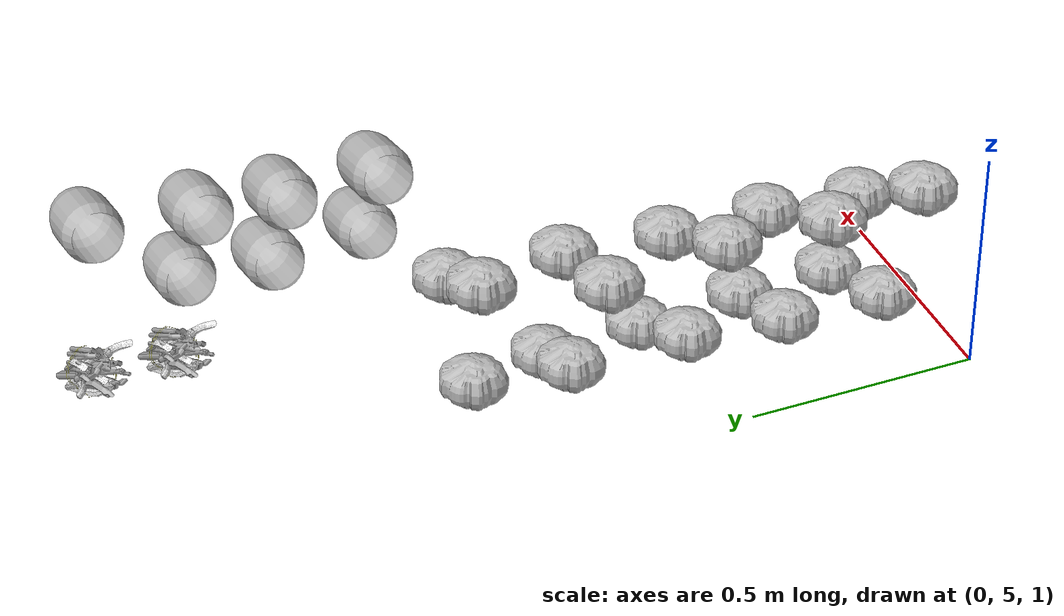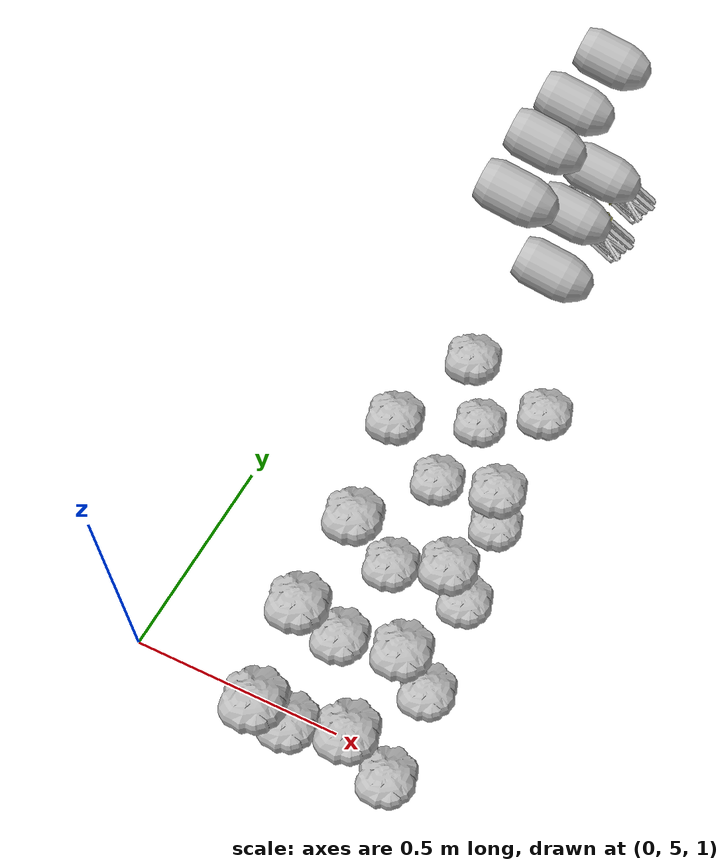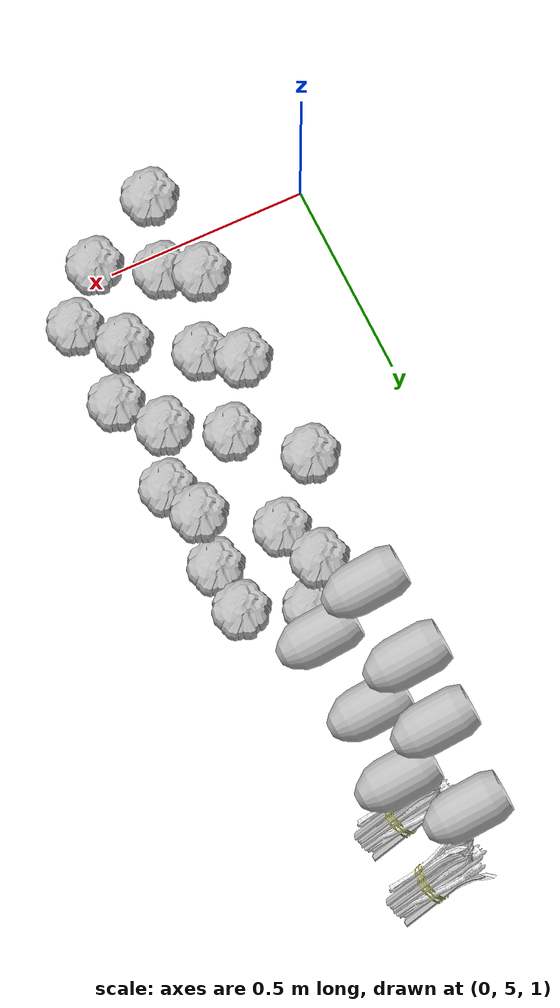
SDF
<sdf version="1.6">
 <world name="default">
  <model name="coliflower">
   <link name="link_2">
    <inertial>
     <mass>1</mass>
     <inertia>
      <ixx>0.166667</ixx>
      <ixy>0</ixy>
      <ixz>0</ixz>
      <iyy>0.166667</iyy>
      <iyz>0</iyz>
      <izz>0.166667</izz>
     </inertia>
    </inertial>
    <visual name="visual">
     <geometry><mesh><uri>model://coliflower/meshes/coliflower.dae</uri><scale>1 1 1</scale></mesh></geometry>
    </visual>
    <collision name="collision">
     <geometry><mesh><uri>model://coliflower/meshes/coliflower.dae</uri><scale>1 1 1</scale></mesh></geometry>
     <surface>
      <friction>
       <ode><mu>1</mu><mu2>1</mu2><fdir1>0 0 0</fdir1><slip1>0</slip1><slip2>0</slip2></ode>
       <torsional>
        <coefficient>1</coefficient>
        <patch_radius>0</patch_radius>
        <surface_radius>0</surface_radius>
        <use_patch_radius>1</use_patch_radius>
        <ode><slip>0</slip></ode>
       </torsional>
      </friction>
      <bounce><restitution_coefficient>0</restitution_coefficient><threshold>1e+06</threshold></bounce>
      <contact>
       <collide_without_contact>0</collide_without_contact>
       <collide_without_contact_bitmask>1</collide_without_contact_bitmask>
       <collide_bitmask>1</collide_bitmask>
       <ode>
        <soft_cfm>0</soft_cfm>
        <soft_erp>0.2</soft_erp>
        <kp>1e+13</kp>
        <kd>1</kd>
        <max_vel>0.01</max_vel>
        <min_depth>0</min_depth>
       </ode>
       <bullet>
        <split_impulse>1</split_impulse>
        <split_impulse_penetration_threshold>-0.01</split_impulse_penetration_threshold>
        <soft_cfm>0</soft_cfm>
        <soft_erp>0.2</soft_erp>
        <kp>1e+13</kp>
        <kd>1</kd>
       </bullet>
      </contact>
     </surface>
    </collision>
   </link>
   <static>1</static>
   <pose>0.357999 4.96364 1.14067 0 -0 0</pose>
  </model>
  <model name="coliflower_clone">
   <link name="link_2">
    <inertial>
     <mass>1</mass>
     <inertia>
      <ixx>0.166667</ixx>
      <ixy>0</ixy>
      <ixz>0</ixz>
      <iyy>0.166667</iyy>
      <iyz>0</iyz>
      <izz>0.166667</izz>
     </inertia>
    </inertial>
    <visual name="visual">
     <geometry><mesh><uri>model://coliflower/meshes/coliflower.dae</uri><scale>1 1 1</scale></mesh></geometry>
    </visual>
    <collision name="collision">
     <geometry><mesh><uri>model://coliflower/meshes/coliflower.dae</uri><scale>1 1 1</scale></mesh></geometry>
     <surface>
      <friction>
       <ode><mu>1</mu><mu2>1</mu2><fdir1>0 0 0</fdir1><slip1>0</slip1><slip2>0</slip2></ode>
       <torsional>
        <coefficient>1</coefficient>
        <patch_radius>0</patch_radius>
        <surface_radius>0</surface_radius>
        <use_patch_radius>1</use_patch_radius>
        <ode><slip>0</slip></ode>
       </torsional>
      </friction>
      <bounce><restitution_coefficient>0</restitution_coefficient><threshold>1e+06</threshold></bounce>
      <contact>
       <collide_without_contact>0</collide_without_contact>
       <collide_without_contact_bitmask>1</collide_without_contact_bitmask>
       <collide_bitmask>1</collide_bitmask>
       <ode>
        <soft_cfm>0</soft_cfm>
        <soft_erp>0.2</soft_erp>
        <kp>1e+13</kp>
        <kd>1</kd>
        <max_vel>0.01</max_vel>
        <min_depth>0</min_depth>
       </ode>
       <bullet>
        <split_impulse>1</split_impulse>
        <split_impulse_penetration_threshold>-0.01</split_impulse_penetration_threshold>
        <soft_cfm>0</soft_cfm>
        <soft_erp>0.2</soft_erp>
        <kp>1e+13</kp>
        <kd>1</kd>
       </bullet>
      </contact>
     </surface>
    </collision>
   </link>
   <static>1</static>
   <pose>0.331237 5.19241 1.14067 0 -0 0</pose>
  </model>
  <model name="coliflower_clone_clone">
   <link name="link_2">
    <inertial>
     <mass>1</mass>
     <inertia>
      <ixx>0.166667</ixx>
      <ixy>0</ixy>
      <ixz>0</ixz>
      <iyy>0.166667</iyy>
      <iyz>0</iyz>
      <izz>0.166667</izz>
     </inertia>
    </inertial>
    <visual name="visual">
     <geometry><mesh><uri>model://coliflower/meshes/coliflower.dae</uri><scale>1 1 1</scale></mesh></geometry>
    </visual>
    <collision name="collision">
     <geometry><mesh><uri>model://coliflower/meshes/coliflower.dae</uri><scale>1 1 1</scale></mesh></geometry>
     <surface>
      <friction>
       <ode><mu>1</mu><mu2>1</mu2><fdir1>0 0 0</fdir1><slip1>0</slip1><slip2>0</slip2></ode>
       <torsional>
        <coefficient>1</coefficient>
        <patch_radius>0</patch_radius>
        <surface_radius>0</surface_radius>
        <use_patch_radius>1</use_patch_radius>
        <ode><slip>0</slip></ode>
       </torsional>
      </friction>
      <bounce><restitution_coefficient>0</restitution_coefficient><threshold>1e+06</threshold></bounce>
      <contact>
       <collide_without_contact>0</collide_without_contact>
       <collide_without_contact_bitmask>1</collide_without_contact_bitmask>
       <collide_bitmask>1</collide_bitmask>
       <ode>
        <soft_cfm>0</soft_cfm>
        <soft_erp>0.2</soft_erp>
        <kp>1e+13</kp>
        <kd>1</kd>
        <max_vel>0.01</max_vel>
        <min_depth>0</min_depth>
       </ode>
       <bullet>
        <split_impulse>1</split_impulse>
        <split_impulse_penetration_threshold>-0.01</split_impulse_penetration_threshold>
        <soft_cfm>0</soft_cfm>
        <soft_erp>0.2</soft_erp>
        <kp>1e+13</kp>
        <kd>1</kd>
       </bullet>
      </contact>
     </surface>
    </collision>
   </link>
   <static>1</static>
   <pose>0.337462 5.4347 1.14067 0 -0 0</pose>
  </model>
  <model name="coliflower_clone_clone_0">
   <link name="link_2">
    <inertial>
     <mass>1</mass>
     <inertia>
      <ixx>0.166667</ixx>
      <ixy>0</ixy>
      <ixz>0</ixz>
      <iyy>0.166667</iyy>
      <iyz>0</iyz>
      <izz>0.166667</izz>
     </inertia>
    </inertial>
    <visual name="visual">
     <geometry><mesh><uri>model://coliflower/meshes/coliflower.dae</uri><scale>1 1 1</scale></mesh></geometry>
    </visual>
    <collision name="collision">
     <geometry><mesh><uri>model://coliflower/meshes/coliflower.dae</uri><scale>1 1 1</scale></mesh></geometry>
     <surface>
      <friction>
       <ode><mu>1</mu><mu2>1</mu2><fdir1>0 0 0</fdir1><slip1>0</slip1><slip2>0</slip2></ode>
       <torsional>
        <coefficient>1</coefficient>
        <patch_radius>0</patch_radius>
        <surface_radius>0</surface_radius>
        <use_patch_radius>1</use_patch_radius>
        <ode><slip>0</slip></ode>
       </torsional>
      </friction>
      <bounce><restitution_coefficient>0</restitution_coefficient><threshold>1e+06</threshold></bounce>
      <contact>
       <collide_without_contact>0</collide_without_contact>
       <collide_without_contact_bitmask>1</collide_without_contact_bitmask>
       <collide_bitmask>1</collide_bitmask>
       <ode>
        <soft_cfm>0</soft_cfm>
        <soft_erp>0.2</soft_erp>
        <kp>1e+13</kp>
        <kd>1</kd>
        <max_vel>0.01</max_vel>
        <min_depth>0</min_depth>
       </ode>
       <bullet>
        <split_impulse>1</split_impulse>
        <split_impulse_penetration_threshold>-0.01</split_impulse_penetration_threshold>
        <soft_cfm>0</soft_cfm>
        <soft_erp>0.2</soft_erp>
        <kp>1e+13</kp>
        <kd>1</kd>
       </bullet>
      </contact>
     </surface>
    </collision>
   </link>
   <static>1</static>
   <pose>0.299893 5.72138 1.14067 0 -0 0</pose>
  </model>
  <model name="coliflower_clone_clone_1">
   <link name="link_2">
    <inertial>
     <mass>1</mass>
     <inertia>
      <ixx>0.166667</ixx>
      <ixy>0</ixy>
      <ixz>0</ixz>
      <iyy>0.166667</iyy>
      <iyz>0</iyz>
      <izz>0.166667</izz>
     </inertia>
    </inertial>
    <visual name="visual">
     <geometry><mesh><uri>model://coliflower/meshes/coliflower.dae</uri><scale>1 1 1</scale></mesh></geometry>
    </visual>
    <collision name="collision">
     <geometry><mesh><uri>model://coliflower/meshes/coliflower.dae</uri><scale>1 1 1</scale></mesh></geometry>
     <surface>
      <friction>
       <ode><mu>1</mu><mu2>1</mu2><fdir1>0 0 0</fdir1><slip1>0</slip1><slip2>0</slip2></ode>
       <torsional>
        <coefficient>1</coefficient>
        <patch_radius>0</patch_radius>
        <surface_radius>0</surface_radius>
        <use_patch_radius>1</use_patch_radius>
        <ode><slip>0</slip></ode>
       </torsional>
      </friction>
      <bounce><restitution_coefficient>0</restitution_coefficient><threshold>1e+06</threshold></bounce>
      <contact>
       <collide_without_contact>0</collide_without_contact>
       <collide_without_contact_bitmask>1</collide_without_contact_bitmask>
       <collide_bitmask>1</collide_bitmask>
       <ode>
        <soft_cfm>0</soft_cfm>
        <soft_erp>0.2</soft_erp>
        <kp>1e+13</kp>
        <kd>1</kd>
        <max_vel>0.01</max_vel>
        <min_depth>0</min_depth>
       </ode>
       <bullet>
        <split_impulse>1</split_impulse>
        <split_impulse_penetration_threshold>-0.01</split_impulse_penetration_threshold>
        <soft_cfm>0</soft_cfm>
        <soft_erp>0.2</soft_erp>
        <kp>1e+13</kp>
        <kd>1</kd>
       </bullet>
      </contact>
     </surface>
    </collision>
   </link>
   <static>1</static>
   <pose>0.394632 5.96597 1.14067 0 -0 0</pose>
  </model>
  <model name="coliflower_clone_clone_2">
   <link name="link_2">
    <inertial>
     <mass>1</mass>
     <inertia>
      <ixx>0.166667</ixx>
      <ixy>0</ixy>
      <ixz>0</ixz>
      <iyy>0.166667</iyy>
      <iyz>0</iyz>
      <izz>0.166667</izz>
     </inertia>
    </inertial>
    <visual name="visual">
     <geometry><mesh><uri>model://coliflower/meshes/coliflower.dae</uri><scale>1 1 1</scale></mesh></geometry>
    </visual>
    <collision name="collision">
     <geometry><mesh><uri>model://coliflower/meshes/coliflower.dae</uri><scale>1 1 1</scale></mesh></geometry>
     <surface>
      <friction>
       <ode><mu>1</mu><mu2>1</mu2><fdir1>0 0 0</fdir1><slip1>0</slip1><slip2>0</slip2></ode>
       <torsional>
        <coefficient>1</coefficient>
        <patch_radius>0</patch_radius>
        <surface_radius>0</surface_radius>
        <use_patch_radius>1</use_patch_radius>
        <ode><slip>0</slip></ode>
       </torsional>
      </friction>
      <bounce><restitution_coefficient>0</restitution_coefficient><threshold>1e+06</threshold></bounce>
      <contact>
       <collide_without_contact>0</collide_without_contact>
       <collide_without_contact_bitmask>1</collide_without_contact_bitmask>
       <collide_bitmask>1</collide_bitmask>
       <ode>
        <soft_cfm>0</soft_cfm>
        <soft_erp>0.2</soft_erp>
        <kp>1e+13</kp>
        <kd>1</kd>
        <max_vel>0.01</max_vel>
        <min_depth>0</min_depth>
       </ode>
       <bullet>
        <split_impulse>1</split_impulse>
        <split_impulse_penetration_threshold>-0.01</split_impulse_penetration_threshold>
        <soft_cfm>0</soft_cfm>
        <soft_erp>0.2</soft_erp>
        <kp>1e+13</kp>
        <kd>1</kd>
       </bullet>
      </contact>
     </surface>
    </collision>
   </link>
   <static>1</static>
   <pose>0.594498 5.96491 1.02947 0 -0 0</pose>
  </model>
  <model name="coliflower_clone_clone_2_clone">
   <link name="link_2">
    <inertial>
     <mass>1</mass>
     <inertia>
      <ixx>0.166667</ixx>
      <ixy>0</ixy>
      <ixz>0</ixz>
      <iyy>0.166667</iyy>
      <iyz>0</iyz>
      <izz>0.166667</izz>
     </inertia>
    </inertial>
    <visual name="visual">
     <geometry><mesh><uri>model://coliflower/meshes/coliflower.dae</uri><scale>1 1 1</scale></mesh></geometry>
    </visual>
    <collision name="collision">
     <geometry><mesh><uri>model://coliflower/meshes/coliflower.dae</uri><scale>1 1 1</scale></mesh></geometry>
     <surface>
      <friction>
       <ode><mu>1</mu><mu2>1</mu2><fdir1>0 0 0</fdir1><slip1>0</slip1><slip2>0</slip2></ode>
       <torsional>
        <coefficient>1</coefficient>
        <patch_radius>0</patch_radius>
        <surface_radius>0</surface_radius>
        <use_patch_radius>1</use_patch_radius>
        <ode><slip>0</slip></ode>
       </torsional>
      </friction>
      <bounce><restitution_coefficient>0</restitution_coefficient><threshold>1e+06</threshold></bounce>
      <contact>
       <collide_without_contact>0</collide_without_contact>
       <collide_without_contact_bitmask>1</collide_without_contact_bitmask>
       <collide_bitmask>1</collide_bitmask>
       <ode>
        <soft_cfm>0</soft_cfm>
        <soft_erp>0.2</soft_erp>
        <kp>1e+13</kp>
        <kd>1</kd>
        <max_vel>0.01</max_vel>
        <min_depth>0</min_depth>
       </ode>
       <bullet>
        <split_impulse>1</split_impulse>
        <split_impulse_penetration_threshold>-0.01</split_impulse_penetration_threshold>
        <soft_cfm>0</soft_cfm>
        <soft_erp>0.2</soft_erp>
        <kp>1e+13</kp>
        <kd>1</kd>
       </bullet>
      </contact>
     </surface>
    </collision>
   </link>
   <static>1</static>
   <pose>0.579307 5.70301 1.02947 0 -0 0</pose>
  </model>
  <model name="coliflower_clone_clone_2_clone_0">
   <link name="link_2">
    <inertial>
     <mass>1</mass>
     <inertia>
      <ixx>0.166667</ixx>
      <ixy>0</ixy>
      <ixz>0</ixz>
      <iyy>0.166667</iyy>
      <iyz>0</iyz>
      <izz>0.166667</izz>
     </inertia>
    </inertial>
    <visual name="visual">
     <geometry><mesh><uri>model://coliflower/meshes/coliflower.dae</uri><scale>1 1 1</scale></mesh></geometry>
    </visual>
    <collision name="collision">
     <geometry><mesh><uri>model://coliflower/meshes/coliflower.dae</uri><scale>1 1 1</scale></mesh></geometry>
     <surface>
      <friction>
       <ode><mu>1</mu><mu2>1</mu2><fdir1>0 0 0</fdir1><slip1>0</slip1><slip2>0</slip2></ode>
       <torsional>
        <coefficient>1</coefficient>
        <patch_radius>0</patch_radius>
        <surface_radius>0</surface_radius>
        <use_patch_radius>1</use_patch_radius>
        <ode><slip>0</slip></ode>
       </torsional>
      </friction>
      <bounce><restitution_coefficient>0</restitution_coefficient><threshold>1e+06</threshold></bounce>
      <contact>
       <collide_without_contact>0</collide_without_contact>
       <collide_without_contact_bitmask>1</collide_without_contact_bitmask>
       <collide_bitmask>1</collide_bitmask>
       <ode>
        <soft_cfm>0</soft_cfm>
        <soft_erp>0.2</soft_erp>
        <kp>1e+13</kp>
        <kd>1</kd>
        <max_vel>0.01</max_vel>
        <min_depth>0</min_depth>
       </ode>
       <bullet>
        <split_impulse>1</split_impulse>
        <split_impulse_penetration_threshold>-0.01</split_impulse_penetration_threshold>
        <soft_cfm>0</soft_cfm>
        <soft_erp>0.2</soft_erp>
        <kp>1e+13</kp>
        <kd>1</kd>
       </bullet>
      </contact>
     </surface>
    </collision>
   </link>
   <static>1</static>
   <pose>0.558591 5.46787 1.02947 0 -0 0</pose>
  </model>
  <model name="coliflower_clone_clone_2_clone_1">
   <link name="link_2">
    <inertial>
     <mass>1</mass>
     <inertia>
      <ixx>0.166667</ixx>
      <ixy>0</ixy>
      <ixz>0</ixz>
      <iyy>0.166667</iyy>
      <iyz>0</iyz>
      <izz>0.166667</izz>
     </inertia>
    </inertial>
    <visual name="visual">
     <geometry><mesh><uri>model://coliflower/meshes/coliflower.dae</uri><scale>1 1 1</scale></mesh></geometry>
    </visual>
    <collision name="collision">
     <geometry><mesh><uri>model://coliflower/meshes/coliflower.dae</uri><scale>1 1 1</scale></mesh></geometry>
     <surface>
      <friction>
       <ode><mu>1</mu><mu2>1</mu2><fdir1>0 0 0</fdir1><slip1>0</slip1><slip2>0</slip2></ode>
       <torsional>
        <coefficient>1</coefficient>
        <patch_radius>0</patch_radius>
        <surface_radius>0</surface_radius>
        <use_patch_radius>1</use_patch_radius>
        <ode><slip>0</slip></ode>
       </torsional>
      </friction>
      <bounce><restitution_coefficient>0</restitution_coefficient><threshold>1e+06</threshold></bounce>
      <contact>
       <collide_without_contact>0</collide_without_contact>
       <collide_without_contact_bitmask>1</collide_without_contact_bitmask>
       <collide_bitmask>1</collide_bitmask>
       <ode>
        <soft_cfm>0</soft_cfm>
        <soft_erp>0.2</soft_erp>
        <kp>1e+13</kp>
        <kd>1</kd>
        <max_vel>0.01</max_vel>
        <min_depth>0</min_depth>
       </ode>
       <bullet>
        <split_impulse>1</split_impulse>
        <split_impulse_penetration_threshold>-0.01</split_impulse_penetration_threshold>
        <soft_cfm>0</soft_cfm>
        <soft_erp>0.2</soft_erp>
        <kp>1e+13</kp>
        <kd>1</kd>
       </bullet>
      </contact>
     </surface>
    </collision>
   </link>
   <static>1</static>
   <pose>0.554069 5.23492 1.02947 0 -0 0</pose>
  </model>
  <model name="coliflower_clone_clone_2_clone_2">
   <link name="link_2">
    <inertial>
     <mass>1</mass>
     <inertia>
      <ixx>0.166667</ixx>
      <ixy>0</ixy>
      <ixz>0</ixz>
      <iyy>0.166667</iyy>
      <iyz>0</iyz>
      <izz>0.166667</izz>
     </inertia>
    </inertial>
    <visual name="visual">
     <geometry><mesh><uri>model://coliflower/meshes/coliflower.dae</uri><scale>1 1 1</scale></mesh></geometry>
    </visual>
    <collision name="collision">
     <geometry><mesh><uri>model://coliflower/meshes/coliflower.dae</uri><scale>1 1 1</scale></mesh></geometry>
     <surface>
      <friction>
       <ode><mu>1</mu><mu2>1</mu2><fdir1>0 0 0</fdir1><slip1>0</slip1><slip2>0</slip2></ode>
       <torsional>
        <coefficient>1</coefficient>
        <patch_radius>0</patch_radius>
        <surface_radius>0</surface_radius>
        <use_patch_radius>1</use_patch_radius>
        <ode><slip>0</slip></ode>
       </torsional>
      </friction>
      <bounce><restitution_coefficient>0</restitution_coefficient><threshold>1e+06</threshold></bounce>
      <contact>
       <collide_without_contact>0</collide_without_contact>
       <collide_without_contact_bitmask>1</collide_without_contact_bitmask>
       <collide_bitmask>1</collide_bitmask>
       <ode>
        <soft_cfm>0</soft_cfm>
        <soft_erp>0.2</soft_erp>
        <kp>1e+13</kp>
        <kd>1</kd>
        <max_vel>0.01</max_vel>
        <min_depth>0</min_depth>
       </ode>
       <bullet>
        <split_impulse>1</split_impulse>
        <split_impulse_penetration_threshold>-0.01</split_impulse_penetration_threshold>
        <soft_cfm>0</soft_cfm>
        <soft_erp>0.2</soft_erp>
        <kp>1e+13</kp>
        <kd>1</kd>
       </bullet>
      </contact>
     </surface>
    </collision>
   </link>
   <static>1</static>
   <pose>0.531966 5.02213 1.02947 0 -0 0</pose>
  </model>
  <model name="coliflower_clone_clone_2_clone_3">
   <link name="link_2">
    <inertial>
     <mass>1</mass>
     <inertia>
      <ixx>0.166667</ixx>
      <ixy>0</ixy>
      <ixz>0</ixz>
      <iyy>0.166667</iyy>
      <iyz>0</iyz>
      <izz>0.166667</izz>
     </inertia>
    </inertial>
    <visual name="visual">
     <geometry><mesh><uri>model://coliflower/meshes/coliflower.dae</uri><scale>1 1 1</scale></mesh></geometry>
    </visual>
    <collision name="collision">
     <geometry><mesh><uri>model://coliflower/meshes/coliflower.dae</uri><scale>1 1 1</scale></mesh></geometry>
     <surface>
      <friction>
       <ode><mu>1</mu><mu2>1</mu2><fdir1>0 0 0</fdir1><slip1>0</slip1><slip2>0</slip2></ode>
       <torsional>
        <coefficient>1</coefficient>
        <patch_radius>0</patch_radius>
        <surface_radius>0</surface_radius>
        <use_patch_radius>1</use_patch_radius>
        <ode><slip>0</slip></ode>
       </torsional>
      </friction>
      <bounce><restitution_coefficient>0</restitution_coefficient><threshold>1e+06</threshold></bounce>
      <contact>
       <collide_without_contact>0</collide_without_contact>
       <collide_without_contact_bitmask>1</collide_without_contact_bitmask>
       <collide_bitmask>1</collide_bitmask>
       <ode>
        <soft_cfm>0</soft_cfm>
        <soft_erp>0.2</soft_erp>
        <kp>1e+13</kp>
        <kd>1</kd>
        <max_vel>0.01</max_vel>
        <min_depth>0</min_depth>
       </ode>
       <bullet>
        <split_impulse>1</split_impulse>
        <split_impulse_penetration_threshold>-0.01</split_impulse_penetration_threshold>
        <soft_cfm>0</soft_cfm>
        <soft_erp>0.2</soft_erp>
        <kp>1e+13</kp>
        <kd>1</kd>
       </bullet>
      </contact>
     </surface>
    </collision>
   </link>
   <static>1</static>
   <pose>0.366536 5.03711 0.877719 0 -0 0</pose>
  </model>
  <model name="coliflower_clone_clone_2_clone_3_clone">
   <link name="link_2">
    <inertial>
     <mass>1</mass>
     <inertia>
      <ixx>0.166667</ixx>
      <ixy>0</ixy>
      <ixz>0</ixz>
      <iyy>0.166667</iyy>
      <iyz>0</iyz>
      <izz>0.166667</izz>
     </inertia>
    </inertial>
    <visual name="visual">
     <geometry><mesh><uri>model://coliflower/meshes/coliflower.dae</uri><scale>1 1 1</scale></mesh></geometry>
    </visual>
    <collision name="collision">
     <geometry><mesh><uri>model://coliflower/meshes/coliflower.dae</uri><scale>1 1 1</scale></mesh></geometry>
     <surface>
      <friction>
       <ode><mu>1</mu><mu2>1</mu2><fdir1>0 0 0</fdir1><slip1>0</slip1><slip2>0</slip2></ode>
       <torsional>
        <coefficient>1</coefficient>
        <patch_radius>0</patch_radius>
        <surface_radius>0</surface_radius>
        <use_patch_radius>1</use_patch_radius>
        <ode><slip>0</slip></ode>
       </torsional>
      </friction>
      <bounce><restitution_coefficient>0</restitution_coefficient><threshold>1e+06</threshold></bounce>
      <contact>
       <collide_without_contact>0</collide_without_contact>
       <collide_without_contact_bitmask>1</collide_without_contact_bitmask>
       <collide_bitmask>1</collide_bitmask>
       <ode>
        <soft_cfm>0</soft_cfm>
        <soft_erp>0.2</soft_erp>
        <kp>1e+13</kp>
        <kd>1</kd>
        <max_vel>0.01</max_vel>
        <min_depth>0</min_depth>
       </ode>
       <bullet>
        <split_impulse>1</split_impulse>
        <split_impulse_penetration_threshold>-0.01</split_impulse_penetration_threshold>
        <soft_cfm>0</soft_cfm>
        <soft_erp>0.2</soft_erp>
        <kp>1e+13</kp>
        <kd>1</kd>
       </bullet>
      </contact>
     </surface>
    </collision>
   </link>
   <static>1</static>
   <pose>0.372603 5.27106 0.877719 0 -0 0</pose>
  </model>
  <model name="coliflower_clone_clone_2_clone_3_clone_0">
   <link name="link_2">
    <inertial>
     <mass>1</mass>
     <inertia>
      <ixx>0.166667</ixx>
      <ixy>0</ixy>
      <ixz>0</ixz>
      <iyy>0.166667</iyy>
      <iyz>0</iyz>
      <izz>0.166667</izz>
     </inertia>
    </inertial>
    <visual name="visual">
     <geometry><mesh><uri>model://coliflower/meshes/coliflower.dae</uri><scale>1 1 1</scale></mesh></geometry>
    </visual>
    <collision name="collision">
     <geometry><mesh><uri>model://coliflower/meshes/coliflower.dae</uri><scale>1 1 1</scale></mesh></geometry>
     <surface>
      <friction>
       <ode><mu>1</mu><mu2>1</mu2><fdir1>0 0 0</fdir1><slip1>0</slip1><slip2>0</slip2></ode>
       <torsional>
        <coefficient>1</coefficient>
        <patch_radius>0</patch_radius>
        <surface_radius>0</surface_radius>
        <use_patch_radius>1</use_patch_radius>
        <ode><slip>0</slip></ode>
       </torsional>
      </friction>
      <bounce><restitution_coefficient>0</restitution_coefficient><threshold>1e+06</threshold></bounce>
      <contact>
       <collide_without_contact>0</collide_without_contact>
       <collide_without_contact_bitmask>1</collide_without_contact_bitmask>
       <collide_bitmask>1</collide_bitmask>
       <ode>
        <soft_cfm>0</soft_cfm>
        <soft_erp>0.2</soft_erp>
        <kp>1e+13</kp>
        <kd>1</kd>
        <max_vel>0.01</max_vel>
        <min_depth>0</min_depth>
       </ode>
       <bullet>
        <split_impulse>1</split_impulse>
        <split_impulse_penetration_threshold>-0.01</split_impulse_penetration_threshold>
        <soft_cfm>0</soft_cfm>
        <soft_erp>0.2</soft_erp>
        <kp>1e+13</kp>
        <kd>1</kd>
       </bullet>
      </contact>
     </surface>
    </collision>
   </link>
   <static>1</static>
   <pose>0.394886 5.49178 0.877719 0 -0 0</pose>
  </model>
  <model name="coliflower_clone_clone_2_clone_3_clone_1">
   <link name="link_2">
    <inertial>
     <mass>1</mass>
     <inertia>
      <ixx>0.166667</ixx>
      <ixy>0</ixy>
      <ixz>0</ixz>
      <iyy>0.166667</iyy>
      <iyz>0</iyz>
      <izz>0.166667</izz>
     </inertia>
    </inertial>
    <visual name="visual">
     <geometry><mesh><uri>model://coliflower/meshes/coliflower.dae</uri><scale>1 1 1</scale></mesh></geometry>
    </visual>
    <collision name="collision">
     <geometry><mesh><uri>model://coliflower/meshes/coliflower.dae</uri><scale>1 1 1</scale></mesh></geometry>
     <surface>
      <friction>
       <ode><mu>1</mu><mu2>1</mu2><fdir1>0 0 0</fdir1><slip1>0</slip1><slip2>0</slip2></ode>
       <torsional>
        <coefficient>1</coefficient>
        <patch_radius>0</patch_radius>
        <surface_radius>0</surface_radius>
        <use_patch_radius>1</use_patch_radius>
        <ode><slip>0</slip></ode>
       </torsional>
      </friction>
      <bounce><restitution_coefficient>0</restitution_coefficient><threshold>1e+06</threshold></bounce>
      <contact>
       <collide_without_contact>0</collide_without_contact>
       <collide_without_contact_bitmask>1</collide_without_contact_bitmask>
       <collide_bitmask>1</collide_bitmask>
       <ode>
        <soft_cfm>0</soft_cfm>
        <soft_erp>0.2</soft_erp>
        <kp>1e+13</kp>
        <kd>1</kd>
        <max_vel>0.01</max_vel>
        <min_depth>0</min_depth>
       </ode>
       <bullet>
        <split_impulse>1</split_impulse>
        <split_impulse_penetration_threshold>-0.01</split_impulse_penetration_threshold>
        <soft_cfm>0</soft_cfm>
        <soft_erp>0.2</soft_erp>
        <kp>1e+13</kp>
        <kd>1</kd>
       </bullet>
      </contact>
     </surface>
    </collision>
   </link>
   <static>1</static>
   <pose>0.393051 5.76326 0.877719 0 -0 0</pose>
  </model>
  <model name="coliflower_clone_clone_2_clone_3_clone_2">
   <link name="link_2">
    <inertial>
     <mass>1</mass>
     <inertia>
      <ixx>0.166667</ixx>
      <ixy>0</ixy>
      <ixz>0</ixz>
      <iyy>0.166667</iyy>
      <iyz>0</iyz>
      <izz>0.166667</izz>
     </inertia>
    </inertial>
    <visual name="visual">
     <geometry><mesh><uri>model://coliflower/meshes/coliflower.dae</uri><scale>1 1 1</scale></mesh></geometry>
    </visual>
    <collision name="collision">
     <geometry><mesh><uri>model://coliflower/meshes/coliflower.dae</uri><scale>1 1 1</scale></mesh></geometry>
     <surface>
      <friction>
       <ode><mu>1</mu><mu2>1</mu2><fdir1>0 0 0</fdir1><slip1>0</slip1><slip2>0</slip2></ode>
       <torsional>
        <coefficient>1</coefficient>
        <patch_radius>0</patch_radius>
        <surface_radius>0</surface_radius>
        <use_patch_radius>1</use_patch_radius>
        <ode><slip>0</slip></ode>
       </torsional>
      </friction>
      <bounce><restitution_coefficient>0</restitution_coefficient><threshold>1e+06</threshold></bounce>
      <contact>
       <collide_without_contact>0</collide_without_contact>
       <collide_without_contact_bitmask>1</collide_without_contact_bitmask>
       <collide_bitmask>1</collide_bitmask>
       <ode>
        <soft_cfm>0</soft_cfm>
        <soft_erp>0.2</soft_erp>
        <kp>1e+13</kp>
        <kd>1</kd>
        <max_vel>0.01</max_vel>
        <min_depth>0</min_depth>
       </ode>
       <bullet>
        <split_impulse>1</split_impulse>
        <split_impulse_penetration_threshold>-0.01</split_impulse_penetration_threshold>
        <soft_cfm>0</soft_cfm>
        <soft_erp>0.2</soft_erp>
        <kp>1e+13</kp>
        <kd>1</kd>
       </bullet>
      </contact>
     </surface>
    </collision>
   </link>
   <static>1</static>
   <pose>0.417402 5.9758 0.877719 0 -0 0</pose>
  </model>
  <model name="coliflower_clone_clone_2_clone_3_clone_3_clone">
   <link name="link_2">
    <inertial>
     <mass>1</mass>
     <inertia>
      <ixx>0.166667</ixx>
      <ixy>0</ixy>
      <ixz>0</ixz>
      <iyy>0.166667</iyy>
      <iyz>0</iyz>
      <izz>0.166667</izz>
     </inertia>
    </inertial>
    <visual name="visual">
     <geometry><mesh><uri>model://coliflower/meshes/coliflower.dae</uri><scale>1 1 1</scale></mesh></geometry>
    </visual>
    <collision name="collision">
     <geometry><mesh><uri>model://coliflower/meshes/coliflower.dae</uri><scale>1 1 1</scale></mesh></geometry>
     <surface>
      <friction>
       <ode><mu>1</mu><mu2>1</mu2><fdir1>0 0 0</fdir1><slip1>0</slip1><slip2>0</slip2></ode>
       <torsional>
        <coefficient>1</coefficient>
        <patch_radius>0</patch_radius>
        <surface_radius>0</surface_radius>
        <use_patch_radius>1</use_patch_radius>
        <ode><slip>0</slip></ode>
       </torsional>
      </friction>
      <bounce><restitution_coefficient>0</restitution_coefficient><threshold>1e+06</threshold></bounce>
      <contact>
       <collide_without_contact>0</collide_without_contact>
       <collide_without_contact_bitmask>1</collide_without_contact_bitmask>
       <collide_bitmask>1</collide_bitmask>
       <ode>
        <soft_cfm>0</soft_cfm>
        <soft_erp>0.2</soft_erp>
        <kp>1e+13</kp>
        <kd>1</kd>
        <max_vel>0.01</max_vel>
        <min_depth>0</min_depth>
       </ode>
       <bullet>
        <split_impulse>1</split_impulse>
        <split_impulse_penetration_threshold>-0.01</split_impulse_penetration_threshold>
        <soft_cfm>0</soft_cfm>
        <soft_erp>0.2</soft_erp>
        <kp>1e+13</kp>
        <kd>1</kd>
       </bullet>
      </contact>
     </surface>
    </collision>
   </link>
   <static>1</static>
   <pose>0.561878 5.7532 0.788103 0 -0 0</pose>
  </model>
  <model name="coliflower_clone_clone_2_clone_3_clone_3_clone_0">
   <link name="link_2">
    <inertial>
     <mass>1</mass>
     <inertia>
      <ixx>0.166667</ixx>
      <ixy>0</ixy>
      <ixz>0</ixz>
      <iyy>0.166667</iyy>
      <iyz>0</iyz>
      <izz>0.166667</izz>
     </inertia>
    </inertial>
    <visual name="visual">
     <geometry><mesh><uri>model://coliflower/meshes/coliflower.dae</uri><scale>1 1 1</scale></mesh></geometry>
    </visual>
    <collision name="collision">
     <geometry><mesh><uri>model://coliflower/meshes/coliflower.dae</uri><scale>1 1 1</scale></mesh></geometry>
     <surface>
      <friction>
       <ode><mu>1</mu><mu2>1</mu2><fdir1>0 0 0</fdir1><slip1>0</slip1><slip2>0</slip2></ode>
       <torsional>
        <coefficient>1</coefficient>
        <patch_radius>0</patch_radius>
        <surface_radius>0</surface_radius>
        <use_patch_radius>1</use_patch_radius>
        <ode><slip>0</slip></ode>
       </torsional>
      </friction>
      <bounce><restitution_coefficient>0</restitution_coefficient><threshold>1e+06</threshold></bounce>
      <contact>
       <collide_without_contact>0</collide_without_contact>
       <collide_without_contact_bitmask>1</collide_without_contact_bitmask>
       <collide_bitmask>1</collide_bitmask>
       <ode>
        <soft_cfm>0</soft_cfm>
        <soft_erp>0.2</soft_erp>
        <kp>1e+13</kp>
        <kd>1</kd>
        <max_vel>0.01</max_vel>
        <min_depth>0</min_depth>
       </ode>
       <bullet>
        <split_impulse>1</split_impulse>
        <split_impulse_penetration_threshold>-0.01</split_impulse_penetration_threshold>
        <soft_cfm>0</soft_cfm>
        <soft_erp>0.2</soft_erp>
        <kp>1e+13</kp>
        <kd>1</kd>
       </bullet>
      </contact>
     </surface>
    </collision>
   </link>
   <static>1</static>
   <pose>0.579191 5.5214 0.788103 0 -0 0</pose>
  </model>
  <model name="coliflower_clone_clone_2_clone_3_clone_3_clone_1">
   <link name="link_2">
    <inertial>
     <mass>1</mass>
     <inertia>
      <ixx>0.166667</ixx>
      <ixy>0</ixy>
      <ixz>0</ixz>
      <iyy>0.166667</iyy>
      <iyz>0</iyz>
      <izz>0.166667</izz>
     </inertia>
    </inertial>
    <visual name="visual">
     <geometry><mesh><uri>model://coliflower/meshes/coliflower.dae</uri><scale>1 1 1</scale></mesh></geometry>
    </visual>
    <collision name="collision">
     <geometry><mesh><uri>model://coliflower/meshes/coliflower.dae</uri><scale>1 1 1</scale></mesh></geometry>
     <surface>
      <friction>
       <ode><mu>1</mu><mu2>1</mu2><fdir1>0 0 0</fdir1><slip1>0</slip1><slip2>0</slip2></ode>
       <torsional>
        <coefficient>1</coefficient>
        <patch_radius>0</patch_radius>
        <surface_radius>0</surface_radius>
        <use_patch_radius>1</use_patch_radius>
        <ode><slip>0</slip></ode>
       </torsional>
      </friction>
      <bounce><restitution_coefficient>0</restitution_coefficient><threshold>1e+06</threshold></bounce>
      <contact>
       <collide_without_contact>0</collide_without_contact>
       <collide_without_contact_bitmask>1</collide_without_contact_bitmask>
       <collide_bitmask>1</collide_bitmask>
       <ode>
        <soft_cfm>0</soft_cfm>
        <soft_erp>0.2</soft_erp>
        <kp>1e+13</kp>
        <kd>1</kd>
        <max_vel>0.01</max_vel>
        <min_depth>0</min_depth>
       </ode>
       <bullet>
        <split_impulse>1</split_impulse>
        <split_impulse_penetration_threshold>-0.01</split_impulse_penetration_threshold>
        <soft_cfm>0</soft_cfm>
        <soft_erp>0.2</soft_erp>
        <kp>1e+13</kp>
        <kd>1</kd>
       </bullet>
      </contact>
     </surface>
    </collision>
   </link>
   <static>1</static>
   <pose>0.596831 5.26852 0.788103 0 -0 0</pose>
  </model>
  <model name="coliflower_clone_clone_2_clone_3_clone_3_clone_2">
   <link name="link_2">
    <inertial>
     <mass>1</mass>
     <inertia>
      <ixx>0.166667</ixx>
      <ixy>0</ixy>
      <ixz>0</ixz>
      <iyy>0.166667</iyy>
      <iyz>0</iyz>
      <izz>0.166667</izz>
     </inertia>
    </inertial>
    <visual name="visual">
     <geometry><mesh><uri>model://coliflower/meshes/coliflower.dae</uri><scale>1 1 1</scale></mesh></geometry>
    </visual>
    <collision name="collision">
     <geometry><mesh><uri>model://coliflower/meshes/coliflower.dae</uri><scale>1 1 1</scale></mesh></geometry>
     <surface>
      <friction>
       <ode><mu>1</mu><mu2>1</mu2><fdir1>0 0 0</fdir1><slip1>0</slip1><slip2>0</slip2></ode>
       <torsional>
        <coefficient>1</coefficient>
        <patch_radius>0</patch_radius>
        <surface_radius>0</surface_radius>
        <use_patch_radius>1</use_patch_radius>
        <ode><slip>0</slip></ode>
       </torsional>
      </friction>
      <bounce><restitution_coefficient>0</restitution_coefficient><threshold>1e+06</threshold></bounce>
      <contact>
       <collide_without_contact>0</collide_without_contact>
       <collide_without_contact_bitmask>1</collide_without_contact_bitmask>
       <collide_bitmask>1</collide_bitmask>
       <ode>
        <soft_cfm>0</soft_cfm>
        <soft_erp>0.2</soft_erp>
        <kp>1e+13</kp>
        <kd>1</kd>
        <max_vel>0.01</max_vel>
        <min_depth>0</min_depth>
       </ode>
       <bullet>
        <split_impulse>1</split_impulse>
        <split_impulse_penetration_threshold>-0.01</split_impulse_penetration_threshold>
        <soft_cfm>0</soft_cfm>
        <soft_erp>0.2</soft_erp>
        <kp>1e+13</kp>
        <kd>1</kd>
       </bullet>
      </contact>
     </surface>
    </collision>
   </link>
   <static>1</static>
   <pose>0.602262 5.04621 0.788103 0 -0 0</pose>
  </model>
  <model name="lettuce">
   <link name="link_0">
    <inertial>
     <mass>1</mass>
     <inertia>
      <ixx>0.166667</ixx>
      <ixy>0</ixy>
      <ixz>0</ixz>
      <iyy>0.166667</iyy>
      <iyz>0</iyz>
      <izz>0.166667</izz>
     </inertia>
    </inertial>
    <visual name="visual">
     <geometry><mesh><uri>model://lettuce/meshes/lettuce.dae</uri><scale>3 3 3</scale></mesh></geometry>
    </visual>
    <collision name="collision">
     <geometry><mesh><uri>model://lettuce/meshes/lettuce.dae</uri><scale>3 3 3</scale></mesh></geometry>
     <surface>
      <friction>
       <ode><mu>1</mu><mu2>1</mu2><fdir1>0 0 0</fdir1><slip1>0</slip1><slip2>0</slip2></ode>
       <torsional>
        <coefficient>1</coefficient>
        <patch_radius>0</patch_radius>
        <surface_radius>0</surface_radius>
        <use_patch_radius>1</use_patch_radius>
        <ode><slip>0</slip></ode>
       </torsional>
      </friction>
      <bounce><restitution_coefficient>0</restitution_coefficient><threshold>1e+06</threshold></bounce>
      <contact>
       <collide_without_contact>0</collide_without_contact>
       <collide_without_contact_bitmask>1</collide_without_contact_bitmask>
       <collide_bitmask>1</collide_bitmask>
       <ode>
        <soft_cfm>0</soft_cfm>
        <soft_erp>0.2</soft_erp>
        <kp>1e+13</kp>
        <kd>1</kd>
        <max_vel>0.01</max_vel>
        <min_depth>0</min_depth>
       </ode>
       <bullet>
        <split_impulse>1</split_impulse>
        <split_impulse_penetration_threshold>-0.01</split_impulse_penetration_threshold>
        <soft_cfm>0</soft_cfm>
        <soft_erp>0.2</soft_erp>
        <kp>1e+13</kp>
        <kd>1</kd>
       </bullet>
      </contact>
     </surface>
    </collision>
   </link>
   <static>1</static>
   <pose>0.310819 6.15961 1.55681 3.14159 1.32136 3.14159</pose>
  </model>
  <model name="lettuce_clone">
   <link name="link_0">
    <inertial>
     <mass>1</mass>
     <inertia>
      <ixx>0.166667</ixx>
      <ixy>0</ixy>
      <ixz>0</ixz>
      <iyy>0.166667</iyy>
      <iyz>0</iyz>
      <izz>0.166667</izz>
     </inertia>
    </inertial>
    <visual name="visual">
     <geometry><mesh><uri>model://lettuce/meshes/lettuce.dae</uri><scale>3 3 3</scale></mesh></geometry>
    </visual>
    <collision name="collision">
     <geometry><mesh><uri>model://lettuce/meshes/lettuce.dae</uri><scale>3 3 3</scale></mesh></geometry>
     <surface>
      <friction>
       <ode><mu>1</mu><mu2>1</mu2><fdir1>0 0 0</fdir1><slip1>0</slip1><slip2>0</slip2></ode>
       <torsional>
        <coefficient>1</coefficient>
        <patch_radius>0</patch_radius>
        <surface_radius>0</surface_radius>
        <use_patch_radius>1</use_patch_radius>
        <ode><slip>0</slip></ode>
       </torsional>
      </friction>
      <bounce><restitution_coefficient>0</restitution_coefficient><threshold>1e+06</threshold></bounce>
      <contact>
       <collide_without_contact>0</collide_without_contact>
       <collide_without_contact_bitmask>1</collide_without_contact_bitmask>
       <collide_bitmask>1</collide_bitmask>
       <ode>
        <soft_cfm>0</soft_cfm>
        <soft_erp>0.2</soft_erp>
        <kp>1e+13</kp>
        <kd>1</kd>
        <max_vel>0.01</max_vel>
        <min_depth>0</min_depth>
       </ode>
       <bullet>
        <split_impulse>1</split_impulse>
        <split_impulse_penetration_threshold>-0.01</split_impulse_penetration_threshold>
        <soft_cfm>0</soft_cfm>
        <soft_erp>0.2</soft_erp>
        <kp>1e+13</kp>
        <kd>1</kd>
       </bullet>
      </contact>
     </surface>
    </collision>
   </link>
   <static>1</static>
   <pose>0.304157 6.36017 1.55681 3.14159 1.32136 3.14159</pose>
  </model>
  <model name="lettuce_clone_0">
   <link name="link_0">
    <inertial>
     <mass>1</mass>
     <inertia>
      <ixx>0.166667</ixx>
      <ixy>0</ixy>
      <ixz>0</ixz>
      <iyy>0.166667</iyy>
      <iyz>0</iyz>
      <izz>0.166667</izz>
     </inertia>
    </inertial>
    <visual name="visual">
     <geometry><mesh><uri>model://lettuce/meshes/lettuce.dae</uri><scale>3 3 3</scale></mesh></geometry>
    </visual>
    <collision name="collision">
     <geometry><mesh><uri>model://lettuce/meshes/lettuce.dae</uri><scale>3 3 3</scale></mesh></geometry>
     <surface>
      <friction>
       <ode><mu>1</mu><mu2>1</mu2><fdir1>0 0 0</fdir1><slip1>0</slip1><slip2>0</slip2></ode>
       <torsional>
        <coefficient>1</coefficient>
        <patch_radius>0</patch_radius>
        <surface_radius>0</surface_radius>
        <use_patch_radius>1</use_patch_radius>
        <ode><slip>0</slip></ode>
       </torsional>
      </friction>
      <bounce><restitution_coefficient>0</restitution_coefficient><threshold>1e+06</threshold></bounce>
      <contact>
       <collide_without_contact>0</collide_without_contact>
       <collide_without_contact_bitmask>1</collide_without_contact_bitmask>
       <collide_bitmask>1</collide_bitmask>
       <ode>
        <soft_cfm>0</soft_cfm>
        <soft_erp>0.2</soft_erp>
        <kp>1e+13</kp>
        <kd>1</kd>
        <max_vel>0.01</max_vel>
        <min_depth>0</min_depth>
       </ode>
       <bullet>
        <split_impulse>1</split_impulse>
        <split_impulse_penetration_threshold>-0.01</split_impulse_penetration_threshold>
        <soft_cfm>0</soft_cfm>
        <soft_erp>0.2</soft_erp>
        <kp>1e+13</kp>
        <kd>1</kd>
       </bullet>
      </contact>
     </surface>
    </collision>
   </link>
   <static>1</static>
   <pose>0.316718 6.52698 1.55681 3.14159 1.32136 3.14159</pose>
  </model>
  <model name="lettuce_clone_1">
   <link name="link_0">
    <inertial>
     <mass>1</mass>
     <inertia>
      <ixx>0.166667</ixx>
      <ixy>0</ixy>
      <ixz>0</ixz>
      <iyy>0.166667</iyy>
      <iyz>0</iyz>
      <izz>0.166667</izz>
     </inertia>
    </inertial>
    <visual name="visual">
     <geometry><mesh><uri>model://lettuce/meshes/lettuce.dae</uri><scale>3 3 3</scale></mesh></geometry>
    </visual>
    <collision name="collision">
     <geometry><mesh><uri>model://lettuce/meshes/lettuce.dae</uri><scale>3 3 3</scale></mesh></geometry>
     <surface>
      <friction>
       <ode><mu>1</mu><mu2>1</mu2><fdir1>0 0 0</fdir1><slip1>0</slip1><slip2>0</slip2></ode>
       <torsional>
        <coefficient>1</coefficient>
        <patch_radius>0</patch_radius>
        <surface_radius>0</surface_radius>
        <use_patch_radius>1</use_patch_radius>
        <ode><slip>0</slip></ode>
       </torsional>
      </friction>
      <bounce><restitution_coefficient>0</restitution_coefficient><threshold>1e+06</threshold></bounce>
      <contact>
       <collide_without_contact>0</collide_without_contact>
       <collide_without_contact_bitmask>1</collide_without_contact_bitmask>
       <collide_bitmask>1</collide_bitmask>
       <ode>
        <soft_cfm>0</soft_cfm>
        <soft_erp>0.2</soft_erp>
        <kp>1e+13</kp>
        <kd>1</kd>
        <max_vel>0.01</max_vel>
        <min_depth>0</min_depth>
       </ode>
       <bullet>
        <split_impulse>1</split_impulse>
        <split_impulse_penetration_threshold>-0.01</split_impulse_penetration_threshold>
        <soft_cfm>0</soft_cfm>
        <soft_erp>0.2</soft_erp>
        <kp>1e+13</kp>
        <kd>1</kd>
       </bullet>
      </contact>
     </surface>
    </collision>
   </link>
   <static>1</static>
   <pose>0.340806 6.73949 1.55681 3.14159 1.32136 3.14159</pose>
  </model>
  <model name="lettuce_clone_4">
   <link name="link_0">
    <inertial>
     <mass>1</mass>
     <inertia>
      <ixx>0.166667</ixx>
      <ixy>0</ixy>
      <ixz>0</ixz>
      <iyy>0.166667</iyy>
      <iyz>0</iyz>
      <izz>0.166667</izz>
     </inertia>
    </inertial>
    <visual name="visual">
     <geometry><mesh><uri>model://lettuce/meshes/lettuce.dae</uri><scale>3 3 3</scale></mesh></geometry>
    </visual>
    <collision name="collision">
     <geometry><mesh><uri>model://lettuce/meshes/lettuce.dae</uri><scale>3 3 3</scale></mesh></geometry>
     <surface>
      <friction>
       <ode><mu>1</mu><mu2>1</mu2><fdir1>0 0 0</fdir1><slip1>0</slip1><slip2>0</slip2></ode>
       <torsional>
        <coefficient>1</coefficient>
        <patch_radius>0</patch_radius>
        <surface_radius>0</surface_radius>
        <use_patch_radius>1</use_patch_radius>
        <ode><slip>0</slip></ode>
       </torsional>
      </friction>
      <bounce><restitution_coefficient>0</restitution_coefficient><threshold>1e+06</threshold></bounce>
      <contact>
       <collide_without_contact>0</collide_without_contact>
       <collide_without_contact_bitmask>1</collide_without_contact_bitmask>
       <collide_bitmask>1</collide_bitmask>
       <ode>
        <soft_cfm>0</soft_cfm>
        <soft_erp>0.2</soft_erp>
        <kp>1e+13</kp>
        <kd>1</kd>
        <max_vel>0.01</max_vel>
        <min_depth>0</min_depth>
       </ode>
       <bullet>
        <split_impulse>1</split_impulse>
        <split_impulse_penetration_threshold>-0.01</split_impulse_penetration_threshold>
        <soft_cfm>0</soft_cfm>
        <soft_erp>0.2</soft_erp>
        <kp>1e+13</kp>
        <kd>1</kd>
       </bullet>
      </contact>
     </surface>
    </collision>
   </link>
   <static>1</static>
   <pose>0.421209 6.15617 1.35049 3.14159 1.32136 3.14159</pose>
  </model>
  <model name="lettuce_clone_4_clone">
   <link name="link_0">
    <inertial>
     <mass>1</mass>
     <inertia>
      <ixx>0.166667</ixx>
      <ixy>0</ixy>
      <ixz>0</ixz>
      <iyy>0.166667</iyy>
      <iyz>0</iyz>
      <izz>0.166667</izz>
     </inertia>
    </inertial>
    <visual name="visual">
     <geometry><mesh><uri>model://lettuce/meshes/lettuce.dae</uri><scale>3 3 3</scale></mesh></geometry>
    </visual>
    <collision name="collision">
     <geometry><mesh><uri>model://lettuce/meshes/lettuce.dae</uri><scale>3 3 3</scale></mesh></geometry>
     <surface>
      <friction>
       <ode><mu>1</mu><mu2>1</mu2><fdir1>0 0 0</fdir1><slip1>0</slip1><slip2>0</slip2></ode>
       <torsional>
        <coefficient>1</coefficient>
        <patch_radius>0</patch_radius>
        <surface_radius>0</surface_radius>
        <use_patch_radius>1</use_patch_radius>
        <ode><slip>0</slip></ode>
       </torsional>
      </friction>
      <bounce><restitution_coefficient>0</restitution_coefficient><threshold>1e+06</threshold></bounce>
      <contact>
       <collide_without_contact>0</collide_without_contact>
       <collide_without_contact_bitmask>1</collide_without_contact_bitmask>
       <collide_bitmask>1</collide_bitmask>
       <ode>
        <soft_cfm>0</soft_cfm>
        <soft_erp>0.2</soft_erp>
        <kp>1e+13</kp>
        <kd>1</kd>
        <max_vel>0.01</max_vel>
        <min_depth>0</min_depth>
       </ode>
       <bullet>
        <split_impulse>1</split_impulse>
        <split_impulse_penetration_threshold>-0.01</split_impulse_penetration_threshold>
        <soft_cfm>0</soft_cfm>
        <soft_erp>0.2</soft_erp>
        <kp>1e+13</kp>
        <kd>1</kd>
       </bullet>
      </contact>
     </surface>
    </collision>
   </link>
   <static>1</static>
   <pose>0.392834 6.36362 1.35049 3.14159 1.32136 3.14159</pose>
  </model>
  <model name="lettuce_clone_4_clone_0">
   <link name="link_0">
    <inertial>
     <mass>1</mass>
     <inertia>
      <ixx>0.166667</ixx>
      <ixy>0</ixy>
      <ixz>0</ixz>
      <iyy>0.166667</iyy>
      <iyz>0</iyz>
      <izz>0.166667</izz>
     </inertia>
    </inertial>
    <visual name="visual">
     <geometry><mesh><uri>model://lettuce/meshes/lettuce.dae</uri><scale>3 3 3</scale></mesh></geometry>
    </visual>
    <collision name="collision">
     <geometry><mesh><uri>model://lettuce/meshes/lettuce.dae</uri><scale>3 3 3</scale></mesh></geometry>
     <surface>
      <friction>
       <ode><mu>1</mu><mu2>1</mu2><fdir1>0 0 0</fdir1><slip1>0</slip1><slip2>0</slip2></ode>
       <torsional>
        <coefficient>1</coefficient>
        <patch_radius>0</patch_radius>
        <surface_radius>0</surface_radius>
        <use_patch_radius>1</use_patch_radius>
        <ode><slip>0</slip></ode>
       </torsional>
      </friction>
      <bounce><restitution_coefficient>0</restitution_coefficient><threshold>1e+06</threshold></bounce>
      <contact>
       <collide_without_contact>0</collide_without_contact>
       <collide_without_contact_bitmask>1</collide_without_contact_bitmask>
       <collide_bitmask>1</collide_bitmask>
       <ode>
        <soft_cfm>0</soft_cfm>
        <soft_erp>0.2</soft_erp>
        <kp>1e+13</kp>
        <kd>1</kd>
        <max_vel>0.01</max_vel>
        <min_depth>0</min_depth>
       </ode>
       <bullet>
        <split_impulse>1</split_impulse>
        <split_impulse_penetration_threshold>-0.01</split_impulse_penetration_threshold>
        <soft_cfm>0</soft_cfm>
        <soft_erp>0.2</soft_erp>
        <kp>1e+13</kp>
        <kd>1</kd>
       </bullet>
      </contact>
     </surface>
    </collision>
   </link>
   <static>1</static>
   <pose>0.410027 6.54279 1.35049 3.14159 1.32136 3.14159</pose>
  </model>
  <model name="sparragus_clone">
   <link name="link_1">
    <inertial>
     <mass>1</mass>
     <inertia>
      <ixx>0.166667</ixx>
      <ixy>0</ixy>
      <ixz>0</ixz>
      <iyy>0.166667</iyy>
      <iyz>0</iyz>
      <izz>0.166667</izz>
     </inertia>
    </inertial>
    <visual name="visual">
     <geometry><mesh><uri>model://asparagus/meshes/asparagus.dae</uri><scale>1 1 1</scale></mesh></geometry>
    </visual>
    <collision name="collision">
     <geometry><mesh><uri>model://asparagus/meshes/asparagus.dae</uri><scale>1 1 1</scale></mesh></geometry>
     <surface>
      <friction>
       <ode><mu>1</mu><mu2>1</mu2><fdir1>0 0 0</fdir1><slip1>0</slip1><slip2>0</slip2></ode>
       <torsional>
        <coefficient>1</coefficient>
        <patch_radius>0</patch_radius>
        <surface_radius>0</surface_radius>
        <use_patch_radius>1</use_patch_radius>
        <ode><slip>0</slip></ode>
       </torsional>
      </friction>
      <bounce><restitution_coefficient>0</restitution_coefficient><threshold>1e+06</threshold></bounce>
      <contact>
       <collide_without_contact>0</collide_without_contact>
       <collide_without_contact_bitmask>1</collide_without_contact_bitmask>
       <collide_bitmask>1</collide_bitmask>
       <ode>
        <soft_cfm>0</soft_cfm>
        <soft_erp>0.2</soft_erp>
        <kp>1e+13</kp>
        <kd>1</kd>
        <max_vel>0.01</max_vel>
        <min_depth>0</min_depth>
       </ode>
       <bullet>
        <split_impulse>1</split_impulse>
        <split_impulse_penetration_threshold>-0.01</split_impulse_penetration_threshold>
        <soft_cfm>0</soft_cfm>
        <soft_erp>0.2</soft_erp>
        <kp>1e+13</kp>
        <kd>1</kd>
       </bullet>
      </contact>
     </surface>
    </collision>
   </link>
   <static>1</static>
   <pose>0.590733 6.56239 1.06866 0 -0.966891 0</pose>
  </model>
  <model name="sparragus_clone_3">
   <link name="link_1">
    <inertial>
     <mass>1</mass>
     <inertia>
      <ixx>0.166667</ixx>
      <ixy>0</ixy>
      <ixz>0</ixz>
      <iyy>0.166667</iyy>
      <iyz>0</iyz>
      <izz>0.166667</izz>
     </inertia>
    </inertial>
    <visual name="visual">
     <geometry><mesh><uri>model://asparagus/meshes/asparagus.dae</uri><scale>1 1 1</scale></mesh></geometry>
    </visual>
    <collision name="collision">
     <geometry><mesh><uri>model://asparagus/meshes/asparagus.dae</uri><scale>1 1 1</scale></mesh></geometry>
     <surface>
      <friction>
       <ode><mu>1</mu><mu2>1</mu2><fdir1>0 0 0</fdir1><slip1>0</slip1><slip2>0</slip2></ode>
       <torsional>
        <coefficient>1</coefficient>
        <patch_radius>0</patch_radius>
        <surface_radius>0</surface_radius>
        <use_patch_radius>1</use_patch_radius>
        <ode><slip>0</slip></ode>
       </torsional>
      </friction>
      <bounce><restitution_coefficient>0</restitution_coefficient><threshold>1e+06</threshold></bounce>
      <contact>
       <collide_without_contact>0</collide_without_contact>
       <collide_without_contact_bitmask>1</collide_without_contact_bitmask>
       <collide_bitmask>1</collide_bitmask>
       <ode>
        <soft_cfm>0</soft_cfm>
        <soft_erp>0.2</soft_erp>
        <kp>1e+13</kp>
        <kd>1</kd>
        <max_vel>0.01</max_vel>
        <min_depth>0</min_depth>
       </ode>
       <bullet>
        <split_impulse>1</split_impulse>
        <split_impulse_penetration_threshold>-0.01</split_impulse_penetration_threshold>
        <soft_cfm>0</soft_cfm>
        <soft_erp>0.2</soft_erp>
        <kp>1e+13</kp>
        <kd>1</kd>
       </bullet>
      </contact>
     </surface>
    </collision>
   </link>
   <static>1</static>
   <pose>0.594006 6.73567 1.06866 0 -0.966891 0</pose>
  </model>
 </world>
</sdf>
